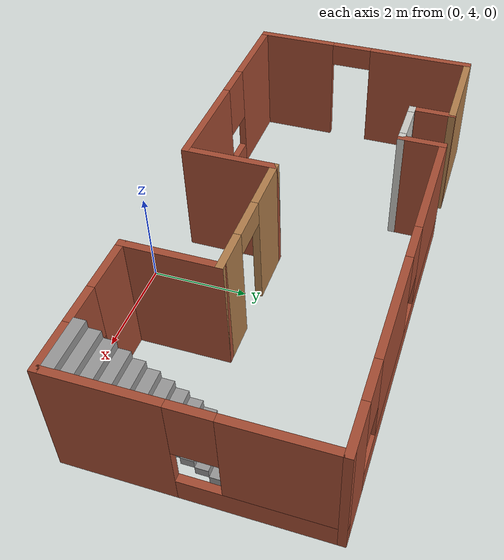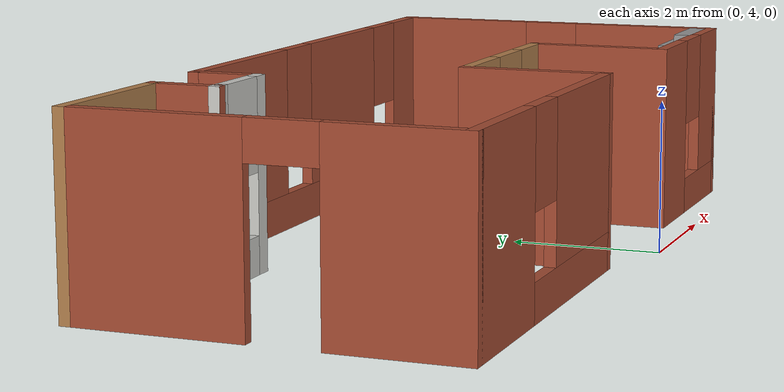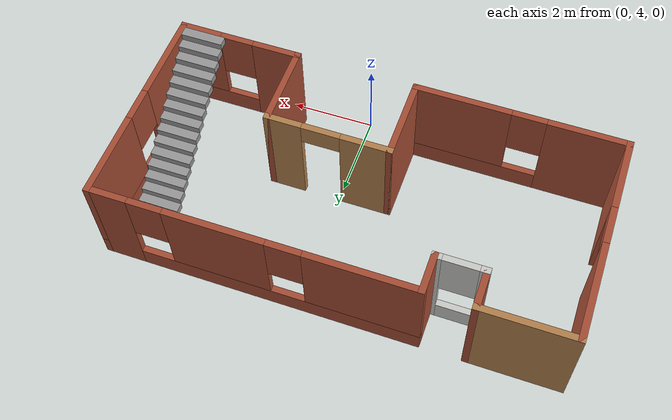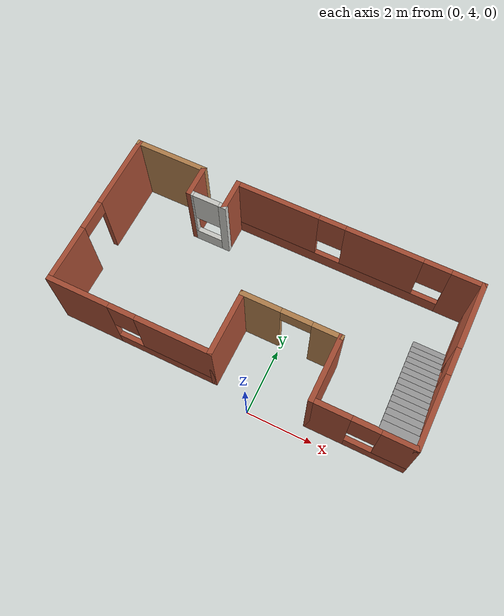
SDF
<?xml version='1.0'?>
<sdf version='1.6'>
  <model name='mybuilding'>
    <pose frame=''>-0.769389 6.84855 0 0 -0 0</pose>
    <link name='Stairs_1'>
      <visual name='Stairs_1_Visual_0'>
        <pose frame=''>4.705 1.01833 0.083333 0 -0 0</pose>
        <geometry>
          <box>
            <size>1 0.233333 0.166667</size>
          </box>
        </geometry>
        <material>
          <script>
            <uri>file://media/materials/scripts/gazebo.material</uri>
            <name>Gazebo/Grey</name>
          </script>
          <ambient>1 1 1 1</ambient>
        </material>
        <meta>
          <layer>0</layer>
        </meta>
      </visual>
      <collision name='Stairs_1_Collision_0'>
        <geometry>
          <box>
            <size>1 0.233333 0.166667</size>
          </box>
        </geometry>
        <pose frame=''>4.705 1.01833 0.083333 0 -0 0</pose>
      </collision>
      <visual name='Stairs_1_Visual_1'>
        <pose frame=''>4.705 0.785 0.25 0 -0 0</pose>
        <geometry>
          <box>
            <size>1 0.233333 0.166667</size>
          </box>
        </geometry>
        <material>
          <script>
            <uri>file://media/materials/scripts/gazebo.material</uri>
            <name>Gazebo/Grey</name>
          </script>
          <ambient>1 1 1 1</ambient>
        </material>
        <meta>
          <layer>0</layer>
        </meta>
      </visual>
      <collision name='Stairs_1_Collision_1'>
        <geometry>
          <box>
            <size>1 0.233333 0.166667</size>
          </box>
        </geometry>
        <pose frame=''>4.705 0.785 0.25 0 -0 0</pose>
      </collision>
      <visual name='Stairs_1_Visual_2'>
        <pose frame=''>4.705 0.551666 0.416667 0 -0 0</pose>
        <geometry>
          <box>
            <size>1 0.233333 0.166667</size>
          </box>
        </geometry>
        <material>
          <script>
            <uri>file://media/materials/scripts/gazebo.material</uri>
            <name>Gazebo/Grey</name>
          </script>
          <ambient>1 1 1 1</ambient>
        </material>
        <meta>
          <layer>0</layer>
        </meta>
      </visual>
      <collision name='Stairs_1_Collision_2'>
        <geometry>
          <box>
            <size>1 0.233333 0.166667</size>
          </box>
        </geometry>
        <pose frame=''>4.705 0.551666 0.416667 0 -0 0</pose>
      </collision>
      <visual name='Stairs_1_Visual_3'>
        <pose frame=''>4.705 0.318333 0.583333 0 -0 0</pose>
        <geometry>
          <box>
            <size>1 0.233333 0.166667</size>
          </box>
        </geometry>
        <material>
          <script>
            <uri>file://media/materials/scripts/gazebo.material</uri>
            <name>Gazebo/Grey</name>
          </script>
          <ambient>1 1 1 1</ambient>
        </material>
        <meta>
          <layer>0</layer>
        </meta>
      </visual>
      <collision name='Stairs_1_Collision_3'>
        <geometry>
          <box>
            <size>1 0.233333 0.166667</size>
          </box>
        </geometry>
        <pose frame=''>4.705 0.318333 0.583333 0 -0 0</pose>
      </collision>
      <visual name='Stairs_1_Visual_4'>
        <pose frame=''>4.705 0.085 0.75 0 -0 0</pose>
        <geometry>
          <box>
            <size>1 0.233333 0.166667</size>
          </box>
        </geometry>
        <material>
          <script>
            <uri>file://media/materials/scripts/gazebo.material</uri>
            <name>Gazebo/Grey</name>
          </script>
          <ambient>1 1 1 1</ambient>
        </material>
        <meta>
          <layer>0</layer>
        </meta>
      </visual>
      <collision name='Stairs_1_Collision_4'>
        <geometry>
          <box>
            <size>1 0.233333 0.166667</size>
          </box>
        </geometry>
        <pose frame=''>4.705 0.085 0.75 0 -0 0</pose>
      </collision>
      <visual name='Stairs_1_Visual_5'>
        <pose frame=''>4.705 -0.148334 0.916667 0 -0 0</pose>
        <geometry>
          <box>
            <size>1 0.233333 0.166667</size>
          </box>
        </geometry>
        <material>
          <script>
            <uri>file://media/materials/scripts/gazebo.material</uri>
            <name>Gazebo/Grey</name>
          </script>
          <ambient>1 1 1 1</ambient>
        </material>
        <meta>
          <layer>0</layer>
        </meta>
      </visual>
      <collision name='Stairs_1_Collision_5'>
        <geometry>
          <box>
            <size>1 0.233333 0.166667</size>
          </box>
        </geometry>
        <pose frame=''>4.705 -0.148334 0.916667 0 -0 0</pose>
      </collision>
      <visual name='Stairs_1_Visual_6'>
        <pose frame=''>4.705 -0.381667 1.08333 0 -0 0</pose>
        <geometry>
          <box>
            <size>1 0.233333 0.166667</size>
          </box>
        </geometry>
        <material>
          <script>
            <uri>file://media/materials/scripts/gazebo.material</uri>
            <name>Gazebo/Grey</name>
          </script>
          <ambient>1 1 1 1</ambient>
        </material>
        <meta>
          <layer>0</layer>
        </meta>
      </visual>
      <collision name='Stairs_1_Collision_6'>
        <geometry>
          <box>
            <size>1 0.233333 0.166667</size>
          </box>
        </geometry>
        <pose frame=''>4.705 -0.381667 1.08333 0 -0 0</pose>
      </collision>
      <visual name='Stairs_1_Visual_7'>
        <pose frame=''>4.705 -0.615 1.25 0 -0 0</pose>
        <geometry>
          <box>
            <size>1 0.233333 0.166667</size>
          </box>
        </geometry>
        <material>
          <script>
            <uri>file://media/materials/scripts/gazebo.material</uri>
            <name>Gazebo/Grey</name>
          </script>
          <ambient>1 1 1 1</ambient>
        </material>
        <meta>
          <layer>0</layer>
        </meta>
      </visual>
      <collision name='Stairs_1_Collision_7'>
        <geometry>
          <box>
            <size>1 0.233333 0.166667</size>
          </box>
        </geometry>
        <pose frame=''>4.705 -0.615 1.25 0 -0 0</pose>
      </collision>
      <visual name='Stairs_1_Visual_8'>
        <pose frame=''>4.705 -0.848333 1.41667 0 -0 0</pose>
        <geometry>
          <box>
            <size>1 0.233333 0.166667</size>
          </box>
        </geometry>
        <material>
          <script>
            <uri>file://media/materials/scripts/gazebo.material</uri>
            <name>Gazebo/Grey</name>
          </script>
          <ambient>1 1 1 1</ambient>
        </material>
        <meta>
          <layer>0</layer>
        </meta>
      </visual>
      <collision name='Stairs_1_Collision_8'>
        <geometry>
          <box>
            <size>1 0.233333 0.166667</size>
          </box>
        </geometry>
        <pose frame=''>4.705 -0.848333 1.41667 0 -0 0</pose>
      </collision>
      <visual name='Stairs_1_Visual_9'>
        <pose frame=''>4.705 -1.08167 1.58333 0 -0 0</pose>
        <geometry>
          <box>
            <size>1 0.233333 0.166667</size>
          </box>
        </geometry>
        <material>
          <script>
            <uri>file://media/materials/scripts/gazebo.material</uri>
            <name>Gazebo/Grey</name>
          </script>
          <ambient>1 1 1 1</ambient>
        </material>
        <meta>
          <layer>0</layer>
        </meta>
      </visual>
      <collision name='Stairs_1_Collision_9'>
        <geometry>
          <box>
            <size>1 0.233333 0.166667</size>
          </box>
        </geometry>
        <pose frame=''>4.705 -1.08167 1.58333 0 -0 0</pose>
      </collision>
      <visual name='Stairs_1_Visual_10'>
        <pose frame=''>4.705 -1.315 1.75 0 -0 0</pose>
        <geometry>
          <box>
            <size>1 0.233333 0.166667</size>
          </box>
        </geometry>
        <material>
          <script>
            <uri>file://media/materials/scripts/gazebo.material</uri>
            <name>Gazebo/Grey</name>
          </script>
          <ambient>1 1 1 1</ambient>
        </material>
        <meta>
          <layer>0</layer>
        </meta>
      </visual>
      <collision name='Stairs_1_Collision_10'>
        <geometry>
          <box>
            <size>1 0.233333 0.166667</size>
          </box>
        </geometry>
        <pose frame=''>4.705 -1.315 1.75 0 -0 0</pose>
      </collision>
      <visual name='Stairs_1_Visual_11'>
        <pose frame=''>4.705 -1.54833 1.91667 0 -0 0</pose>
        <geometry>
          <box>
            <size>1 0.233333 0.166667</size>
          </box>
        </geometry>
        <material>
          <script>
            <uri>file://media/materials/scripts/gazebo.material</uri>
            <name>Gazebo/Grey</name>
          </script>
          <ambient>1 1 1 1</ambient>
        </material>
        <meta>
          <layer>0</layer>
        </meta>
      </visual>
      <collision name='Stairs_1_Collision_11'>
        <geometry>
          <box>
            <size>1 0.233333 0.166667</size>
          </box>
        </geometry>
        <pose frame=''>4.705 -1.54833 1.91667 0 -0 0</pose>
      </collision>
      <visual name='Stairs_1_Visual_12'>
        <pose frame=''>4.705 -1.78167 2.08333 0 -0 0</pose>
        <geometry>
          <box>
            <size>1 0.233333 0.166667</size>
          </box>
        </geometry>
        <material>
          <script>
            <uri>file://media/materials/scripts/gazebo.material</uri>
            <name>Gazebo/Grey</name>
          </script>
          <ambient>1 1 1 1</ambient>
        </material>
        <meta>
          <layer>0</layer>
        </meta>
      </visual>
      <collision name='Stairs_1_Collision_12'>
        <geometry>
          <box>
            <size>1 0.233333 0.166667</size>
          </box>
        </geometry>
        <pose frame=''>4.705 -1.78167 2.08333 0 -0 0</pose>
      </collision>
      <visual name='Stairs_1_Visual_13'>
        <pose frame=''>4.705 -2.015 2.25 0 -0 0</pose>
        <geometry>
          <box>
            <size>1 0.233333 0.166667</size>
          </box>
        </geometry>
        <material>
          <script>
            <uri>file://media/materials/scripts/gazebo.material</uri>
            <name>Gazebo/Grey</name>
          </script>
          <ambient>1 1 1 1</ambient>
        </material>
        <meta>
          <layer>0</layer>
        </meta>
      </visual>
      <collision name='Stairs_1_Collision_13'>
        <geometry>
          <box>
            <size>1 0.233333 0.166667</size>
          </box>
        </geometry>
        <pose frame=''>4.705 -2.015 2.25 0 -0 0</pose>
      </collision>
      <visual name='Stairs_1_Visual_14'>
        <pose frame=''>4.705 -2.24833 2.41667 0 -0 0</pose>
        <geometry>
          <box>
            <size>1 0.233333 0.166667</size>
          </box>
        </geometry>
        <material>
          <script>
            <uri>file://media/materials/scripts/gazebo.material</uri>
            <name>Gazebo/Grey</name>
          </script>
          <ambient>1 1 1 1</ambient>
        </material>
        <meta>
          <layer>0</layer>
        </meta>
      </visual>
      <collision name='Stairs_1_Collision_14'>
        <geometry>
          <box>
            <size>1 0.233333 0.166667</size>
          </box>
        </geometry>
        <pose frame=''>4.705 -2.24833 2.41667 0 -0 0</pose>
      </collision>
    </link>
    <link name='Wall_10'>
      <pose frame=''>5.275 0 0 0 -0 1.5708</pose>
      <visual name='Wall_10_Visual_0'>
        <pose frame=''>-1.4175 0 1.25 0 -0 0</pose>
        <geometry>
          <box>
            <size>2.165 0.15 2.5</size>
          </box>
        </geometry>
        <material>
          <script>
            <uri>file://media/materials/scripts/gazebo.material</uri>
            <name>Gazebo/Bricks</name>
          </script>
          <ambient>1 0.764706 0.305882 1</ambient>
        </material>
        <meta>
          <layer>0</layer>
        </meta>
      </visual>
      <collision name='Wall_10_Collision_0'>
        <geometry>
          <box>
            <size>2.165 0.15 2.5</size>
          </box>
        </geometry>
        <pose frame=''>-1.4175 0 1.25 0 -0 0</pose>
      </collision>
      <visual name='Wall_10_Visual_1'>
        <pose frame=''>1.0825 0 0.25 0 -0 0</pose>
        <geometry>
          <box>
            <size>2.835 0.15 0.5</size>
          </box>
        </geometry>
        <material>
          <script>
            <uri>file://media/materials/scripts/gazebo.material</uri>
            <name>Gazebo/Bricks</name>
          </script>
          <ambient>1 0.764706 0.305882 1</ambient>
        </material>
        <meta>
          <layer>0</layer>
        </meta>
      </visual>
      <collision name='Wall_10_Collision_1'>
        <geometry>
          <box>
            <size>2.835 0.15 0.5</size>
          </box>
        </geometry>
        <pose frame=''>1.0825 0 0.25 0 -0 0</pose>
      </collision>
      <visual name='Wall_10_Visual_2'>
        <pose frame=''>1.4825 0 1.5 0 -0 0</pose>
        <geometry>
          <box>
            <size>2.035 0.15 2</size>
          </box>
        </geometry>
        <material>
          <script>
            <uri>file://media/materials/scripts/gazebo.material</uri>
            <name>Gazebo/Bricks</name>
          </script>
          <ambient>1 0.764706 0.305882 1</ambient>
        </material>
        <meta>
          <layer>0</layer>
        </meta>
      </visual>
      <collision name='Wall_10_Collision_2'>
        <geometry>
          <box>
            <size>2.035 0.15 2</size>
          </box>
        </geometry>
        <pose frame=''>1.4825 0 1.5 0 -0 0</pose>
      </collision>
      <visual name='Wall_10_Visual_3'>
        <pose frame=''>0.065 0 1.9 0 -0 0</pose>
        <geometry>
          <box>
            <size>0.8 0.15 1.2</size>
          </box>
        </geometry>
        <material>
          <script>
            <uri>file://media/materials/scripts/gazebo.material</uri>
            <name>Gazebo/Bricks</name>
          </script>
          <ambient>1 0.764706 0.305882 1</ambient>
        </material>
        <meta>
          <layer>0</layer>
        </meta>
      </visual>
      <collision name='Wall_10_Collision_3'>
        <geometry>
          <box>
            <size>0.8 0.15 1.2</size>
          </box>
        </geometry>
        <pose frame=''>0.065 0 1.9 0 -0 0</pose>
      </collision>
    </link>
    <link name='Wall_11'>
      <pose frame=''>1.6 2.425 0 0 -0 3.14159</pose>
      <visual name='Wall_11_Visual_0'>
        <pose frame=''>-3.2575 0 1.25 0 -0 0</pose>
        <geometry>
          <box>
            <size>0.985 0.15 2.5</size>
          </box>
        </geometry>
        <material>
          <script>
            <uri>file://media/materials/scripts/gazebo.material</uri>
            <name>Gazebo/Bricks</name>
          </script>
          <ambient>1 0.764706 0.305882 1</ambient>
        </material>
        <meta>
          <layer>0</layer>
        </meta>
      </visual>
      <collision name='Wall_11_Collision_0'>
        <geometry>
          <box>
            <size>0.985 0.15 2.5</size>
          </box>
        </geometry>
        <pose frame=''>-3.2575 0 1.25 0 -0 0</pose>
      </collision>
      <visual name='Wall_11_Visual_1'>
        <pose frame=''>0.4925 0 0.25 0 -0 0</pose>
        <geometry>
          <box>
            <size>6.515 0.15 0.5</size>
          </box>
        </geometry>
        <material>
          <script>
            <uri>file://media/materials/scripts/gazebo.material</uri>
            <name>Gazebo/Bricks</name>
          </script>
          <ambient>1 0.764706 0.305882 1</ambient>
        </material>
        <meta>
          <layer>0</layer>
        </meta>
      </visual>
      <collision name='Wall_11_Collision_1'>
        <geometry>
          <box>
            <size>6.515 0.15 0.5</size>
          </box>
        </geometry>
        <pose frame=''>0.4925 0 0.25 0 -0 0</pose>
      </collision>
      <visual name='Wall_11_Visual_2'>
        <pose frame=''>-0.815 0 1.5 0 -0 0</pose>
        <geometry>
          <box>
            <size>2.3 0.15 2</size>
          </box>
        </geometry>
        <material>
          <script>
            <uri>file://media/materials/scripts/gazebo.material</uri>
            <name>Gazebo/Bricks</name>
          </script>
          <ambient>1 0.764706 0.305882 1</ambient>
        </material>
        <meta>
          <layer>0</layer>
        </meta>
      </visual>
      <collision name='Wall_11_Collision_2'>
        <geometry>
          <box>
            <size>2.3 0.15 2</size>
          </box>
        </geometry>
        <pose frame=''>-0.815 0 1.5 0 -0 0</pose>
      </collision>
      <visual name='Wall_11_Visual_3'>
        <pose frame=''>2.4425 0 1.5 0 -0 0</pose>
        <geometry>
          <box>
            <size>2.615 0.15 2</size>
          </box>
        </geometry>
        <material>
          <script>
            <uri>file://media/materials/scripts/gazebo.material</uri>
            <name>Gazebo/Bricks</name>
          </script>
          <ambient>1 0.764706 0.305882 1</ambient>
        </material>
        <meta>
          <layer>0</layer>
        </meta>
      </visual>
      <collision name='Wall_11_Collision_3'>
        <geometry>
          <box>
            <size>2.615 0.15 2</size>
          </box>
        </geometry>
        <pose frame=''>2.4425 0 1.5 0 -0 0</pose>
      </collision>
      <visual name='Wall_11_Visual_4'>
        <pose frame=''>-2.365 0 1.9 0 -0 0</pose>
        <geometry>
          <box>
            <size>0.8 0.15 1.2</size>
          </box>
        </geometry>
        <material>
          <script>
            <uri>file://media/materials/scripts/gazebo.material</uri>
            <name>Gazebo/Bricks</name>
          </script>
          <ambient>1 0.764706 0.305882 1</ambient>
        </material>
        <meta>
          <layer>0</layer>
        </meta>
      </visual>
      <collision name='Wall_11_Collision_4'>
        <geometry>
          <box>
            <size>0.8 0.15 1.2</size>
          </box>
        </geometry>
        <pose frame=''>-2.365 0 1.9 0 -0 0</pose>
      </collision>
      <visual name='Wall_11_Visual_5'>
        <pose frame=''>0.735 0 1.9 0 -0 0</pose>
        <geometry>
          <box>
            <size>0.8 0.15 1.2</size>
          </box>
        </geometry>
        <material>
          <script>
            <uri>file://media/materials/scripts/gazebo.material</uri>
            <name>Gazebo/Bricks</name>
          </script>
          <ambient>1 0.764706 0.305882 1</ambient>
        </material>
        <meta>
          <layer>0</layer>
        </meta>
      </visual>
      <collision name='Wall_11_Collision_5'>
        <geometry>
          <box>
            <size>0.8 0.15 1.2</size>
          </box>
        </geometry>
        <pose frame=''>0.735 0 1.9 0 -0 0</pose>
      </collision>
    </link>
    <link name='Wall_12'>
      <collision name='Wall_12_Collision'>
        <geometry>
          <box>
            <size>1 0.15 2.5</size>
          </box>
        </geometry>
        <pose frame=''>0 0 1.25 0 -0 0</pose>
      </collision>
      <visual name='Wall_12_Visual'>
        <pose frame=''>0 0 1.25 0 -0 0</pose>
        <geometry>
          <box>
            <size>1 0.15 2.5</size>
          </box>
        </geometry>
        <material>
          <script>
            <uri>file://media/materials/scripts/gazebo.material</uri>
            <name>Gazebo/Bricks</name>
          </script>
          <ambient>1 0.764706 0.305882 1</ambient>
        </material>
        <meta>
          <layer>0</layer>
        </meta>
      </visual>
      <pose frame=''>-2.075 2 0 0 0 -1.5708</pose>
    </link>
    <link name='Wall_13'>
      <pose frame=''>-2.625 1.575 0 0 -0 3.14159</pose>
      <visual name='Wall_13_Visual_0'>
        <pose frame=''>-0.5075 0 1.25 0 -0 0</pose>
        <geometry>
          <box>
            <size>0.235 0.15 2.5</size>
          </box>
        </geometry>
        <material>
          <script>
            <uri>file://media/materials/scripts/gazebo.material</uri>
            <name>Gazebo/CeilingTiled</name>
          </script>
          <ambient>1 0.764706 0.305882 1</ambient>
        </material>
        <meta>
          <layer>0</layer>
        </meta>
      </visual>
      <collision name='Wall_13_Collision_0'>
        <geometry>
          <box>
            <size>0.235 0.15 2.5</size>
          </box>
        </geometry>
        <pose frame=''>-0.5075 0 1.25 0 -0 0</pose>
      </collision>
      <visual name='Wall_13_Visual_1'>
        <pose frame=''>0.1175 0 0.25 0 -0 0</pose>
        <geometry>
          <box>
            <size>1.015 0.15 0.5</size>
          </box>
        </geometry>
        <material>
          <script>
            <uri>file://media/materials/scripts/gazebo.material</uri>
            <name>Gazebo/CeilingTiled</name>
          </script>
          <ambient>1 0.764706 0.305882 1</ambient>
        </material>
        <meta>
          <layer>0</layer>
        </meta>
      </visual>
      <collision name='Wall_13_Collision_1'>
        <geometry>
          <box>
            <size>1.015 0.15 0.5</size>
          </box>
        </geometry>
        <pose frame=''>0.1175 0 0.25 0 -0 0</pose>
      </collision>
      <visual name='Wall_13_Visual_2'>
        <pose frame=''>0.5175 0 1.5 0 -0 0</pose>
        <geometry>
          <box>
            <size>0.215 0.15 2</size>
          </box>
        </geometry>
        <material>
          <script>
            <uri>file://media/materials/scripts/gazebo.material</uri>
            <name>Gazebo/CeilingTiled</name>
          </script>
          <ambient>1 0.764706 0.305882 1</ambient>
        </material>
        <meta>
          <layer>0</layer>
        </meta>
      </visual>
      <collision name='Wall_13_Collision_2'>
        <geometry>
          <box>
            <size>0.215 0.15 2</size>
          </box>
        </geometry>
        <pose frame=''>0.5175 0 1.5 0 -0 0</pose>
      </collision>
      <visual name='Wall_13_Visual_3'>
        <pose frame=''>0.01 0 1.9 0 -0 0</pose>
        <geometry>
          <box>
            <size>0.8 0.15 1.2</size>
          </box>
        </geometry>
        <material>
          <script>
            <uri>file://media/materials/scripts/gazebo.material</uri>
            <name>Gazebo/CeilingTiled</name>
          </script>
          <ambient>1 0.764706 0.305882 1</ambient>
        </material>
        <meta>
          <layer>0</layer>
        </meta>
      </visual>
      <collision name='Wall_13_Collision_3'>
        <geometry>
          <box>
            <size>0.8 0.15 1.2</size>
          </box>
        </geometry>
        <pose frame=''>0.01 0 1.9 0 -0 0</pose>
      </collision>
    </link>
    <link name='Wall_14'>
      <collision name='Wall_14_Collision'>
        <geometry>
          <box>
            <size>1 0.15 2.5</size>
          </box>
        </geometry>
        <pose frame=''>0 0 1.25 0 -0 0</pose>
      </collision>
      <visual name='Wall_14_Visual'>
        <pose frame=''>0 0 1.25 0 -0 0</pose>
        <geometry>
          <box>
            <size>1 0.15 2.5</size>
          </box>
        </geometry>
        <material>
          <script>
            <uri>file://media/materials/scripts/gazebo.material</uri>
            <name>Gazebo/Bricks</name>
          </script>
          <ambient>1 0.764706 0.305882 1</ambient>
        </material>
        <meta>
          <layer>0</layer>
        </meta>
      </visual>
      <pose frame=''>-3.175 2 0 0 -0 1.5708</pose>
    </link>
    <link name='Wall_15'>
      <collision name='Wall_15_Collision'>
        <geometry>
          <box>
            <size>2.25 0.15 2.5</size>
          </box>
        </geometry>
        <pose frame=''>0 0 1.25 0 -0 0</pose>
      </collision>
      <visual name='Wall_15_Visual'>
        <pose frame=''>0 0 1.25 0 -0 0</pose>
        <geometry>
          <box>
            <size>2.25 0.15 2.5</size>
          </box>
        </geometry>
        <material>
          <script>
            <uri>file://media/materials/scripts/gazebo.material</uri>
            <name>Gazebo/Wood</name>
          </script>
          <ambient>1 0.764706 0.305882 1</ambient>
        </material>
        <meta>
          <layer>0</layer>
        </meta>
      </visual>
      <pose frame=''>-4.225 2.425 0 0 -0 3.14159</pose>
    </link>
    <link name='Wall_4'>
      <pose frame=''>-5.275 0 0 0 0 -1.5708</pose>
      <visual name='Wall_4_Visual_0'>
        <pose frame=''>-1.3375 0 1.25 0 -0 0</pose>
        <geometry>
          <box>
            <size>2.325 0.15 2.5</size>
          </box>
        </geometry>
        <material>
          <script>
            <uri>file://media/materials/scripts/gazebo.material</uri>
            <name>Gazebo/Bricks</name>
          </script>
          <ambient>0.996078 0.47451 0.0196078 1</ambient>
        </material>
        <meta>
          <layer>0</layer>
        </meta>
      </visual>
      <collision name='Wall_4_Collision_0'>
        <geometry>
          <box>
            <size>2.325 0.15 2.5</size>
          </box>
        </geometry>
        <pose frame=''>-1.3375 0 1.25 0 -0 0</pose>
      </collision>
      <visual name='Wall_4_Visual_1'>
        <pose frame=''>1.6125 0 1.25 0 -0 0</pose>
        <geometry>
          <box>
            <size>1.775 0.15 2.5</size>
          </box>
        </geometry>
        <material>
          <script>
            <uri>file://media/materials/scripts/gazebo.material</uri>
            <name>Gazebo/Bricks</name>
          </script>
          <ambient>0.996078 0.47451 0.0196078 1</ambient>
        </material>
        <meta>
          <layer>0</layer>
        </meta>
      </visual>
      <collision name='Wall_4_Collision_1'>
        <geometry>
          <box>
            <size>1.775 0.15 2.5</size>
          </box>
        </geometry>
        <pose frame=''>1.6125 0 1.25 0 -0 0</pose>
      </collision>
      <visual name='Wall_4_Visual_2'>
        <pose frame=''>0.275 0 2.25 0 -0 0</pose>
        <geometry>
          <box>
            <size>0.9 0.15 0.5</size>
          </box>
        </geometry>
        <material>
          <script>
            <uri>file://media/materials/scripts/gazebo.material</uri>
            <name>Gazebo/Bricks</name>
          </script>
          <ambient>0.996078 0.47451 0.0196078 1</ambient>
        </material>
        <meta>
          <layer>0</layer>
        </meta>
      </visual>
      <collision name='Wall_4_Collision_2'>
        <geometry>
          <box>
            <size>0.9 0.15 0.5</size>
          </box>
        </geometry>
        <pose frame=''>0.275 0 2.25 0 -0 0</pose>
      </collision>
    </link>
    <link name='Wall_5'>
      <pose frame=''>-2.85 -2.425 0 0 -0 0</pose>
      <visual name='Wall_5_Visual_0'>
        <pose frame=''>-1.5525 0 1.25 0 -0 0</pose>
        <geometry>
          <box>
            <size>1.895 0.15 2.5</size>
          </box>
        </geometry>
        <material>
          <script>
            <uri>file://media/materials/scripts/gazebo.material</uri>
            <name>Gazebo/Bricks</name>
          </script>
          <ambient>1 0.764706 0.305882 1</ambient>
        </material>
        <meta>
          <layer>0</layer>
        </meta>
      </visual>
      <collision name='Wall_5_Collision_0'>
        <geometry>
          <box>
            <size>1.895 0.15 2.5</size>
          </box>
        </geometry>
        <pose frame=''>-1.5525 0 1.25 0 -0 0</pose>
      </collision>
      <visual name='Wall_5_Visual_1'>
        <pose frame=''>0.9475 0 0.25 0 -0 0</pose>
        <geometry>
          <box>
            <size>3.105 0.15 0.5</size>
          </box>
        </geometry>
        <material>
          <script>
            <uri>file://media/materials/scripts/gazebo.material</uri>
            <name>Gazebo/Bricks</name>
          </script>
          <ambient>1 0.764706 0.305882 1</ambient>
        </material>
        <meta>
          <layer>0</layer>
        </meta>
      </visual>
      <collision name='Wall_5_Collision_1'>
        <geometry>
          <box>
            <size>3.105 0.15 0.5</size>
          </box>
        </geometry>
        <pose frame=''>0.9475 0 0.25 0 -0 0</pose>
      </collision>
      <visual name='Wall_5_Visual_2'>
        <pose frame=''>1.3475 0 1.5 0 -0 0</pose>
        <geometry>
          <box>
            <size>2.305 0.15 2</size>
          </box>
        </geometry>
        <material>
          <script>
            <uri>file://media/materials/scripts/gazebo.material</uri>
            <name>Gazebo/Bricks</name>
          </script>
          <ambient>1 0.764706 0.305882 1</ambient>
        </material>
        <meta>
          <layer>0</layer>
        </meta>
      </visual>
      <collision name='Wall_5_Collision_2'>
        <geometry>
          <box>
            <size>2.305 0.15 2</size>
          </box>
        </geometry>
        <pose frame=''>1.3475 0 1.5 0 -0 0</pose>
      </collision>
      <visual name='Wall_5_Visual_3'>
        <pose frame=''>-0.205 0 1.9 0 -0 0</pose>
        <geometry>
          <box>
            <size>0.8 0.15 1.2</size>
          </box>
        </geometry>
        <material>
          <script>
            <uri>file://media/materials/scripts/gazebo.material</uri>
            <name>Gazebo/Bricks</name>
          </script>
          <ambient>1 0.764706 0.305882 1</ambient>
        </material>
        <meta>
          <layer>0</layer>
        </meta>
      </visual>
      <collision name='Wall_5_Collision_3'>
        <geometry>
          <box>
            <size>0.8 0.15 1.2</size>
          </box>
        </geometry>
        <pose frame=''>-0.205 0 1.9 0 -0 0</pose>
      </collision>
    </link>
    <link name='Wall_6'>
      <collision name='Wall_6_Collision'>
        <geometry>
          <box>
            <size>2 0.15 2.5</size>
          </box>
        </geometry>
        <pose frame=''>0 0 1.25 0 -0 0</pose>
      </collision>
      <visual name='Wall_6_Visual'>
        <pose frame=''>0 0 1.25 0 -0 0</pose>
        <geometry>
          <box>
            <size>2 0.15 2.5</size>
          </box>
        </geometry>
        <material>
          <script>
            <uri>file://media/materials/scripts/gazebo.material</uri>
            <name>Gazebo/Bricks</name>
          </script>
          <ambient>1 0.764706 0.305882 1</ambient>
        </material>
        <meta>
          <layer>0</layer>
        </meta>
      </visual>
      <pose frame=''>-0.425 -1.5 0 0 -0 1.5708</pose>
    </link>
    <link name='Wall_7'>
      <pose frame=''>1 -0.575 0 0 -0 0</pose>
      <visual name='Wall_7_Visual_0'>
        <pose frame=''>-0.8925 0 1.25 0 -0 0</pose>
        <geometry>
          <box>
            <size>1.215 0.15 2.5</size>
          </box>
        </geometry>
        <material>
          <script>
            <uri>file://media/materials/scripts/gazebo.material</uri>
            <name>Gazebo/Wood</name>
          </script>
          <ambient>1 0.764706 0.305882 1</ambient>
        </material>
        <meta>
          <layer>0</layer>
        </meta>
      </visual>
      <collision name='Wall_7_Collision_0'>
        <geometry>
          <box>
            <size>1.215 0.15 2.5</size>
          </box>
        </geometry>
        <pose frame=''>-0.8925 0 1.25 0 -0 0</pose>
      </collision>
      <visual name='Wall_7_Visual_1'>
        <pose frame=''>1.0575 0 1.25 0 -0 0</pose>
        <geometry>
          <box>
            <size>0.885 0.15 2.5</size>
          </box>
        </geometry>
        <material>
          <script>
            <uri>file://media/materials/scripts/gazebo.material</uri>
            <name>Gazebo/Wood</name>
          </script>
          <ambient>1 0.764706 0.305882 1</ambient>
        </material>
        <meta>
          <layer>0</layer>
        </meta>
      </visual>
      <collision name='Wall_7_Collision_1'>
        <geometry>
          <box>
            <size>0.885 0.15 2.5</size>
          </box>
        </geometry>
        <pose frame=''>1.0575 0 1.25 0 -0 0</pose>
      </collision>
      <visual name='Wall_7_Visual_2'>
        <pose frame=''>0.165 0 2.25 0 -0 0</pose>
        <geometry>
          <box>
            <size>0.9 0.15 0.5</size>
          </box>
        </geometry>
        <material>
          <script>
            <uri>file://media/materials/scripts/gazebo.material</uri>
            <name>Gazebo/Wood</name>
          </script>
          <ambient>1 0.764706 0.305882 1</ambient>
        </material>
        <meta>
          <layer>0</layer>
        </meta>
      </visual>
      <collision name='Wall_7_Collision_2'>
        <geometry>
          <box>
            <size>0.9 0.15 0.5</size>
          </box>
        </geometry>
        <pose frame=''>0.165 0 2.25 0 -0 0</pose>
      </collision>
    </link>
    <link name='Wall_8'>
      <collision name='Wall_8_Collision'>
        <geometry>
          <box>
            <size>2 0.15 2.5</size>
          </box>
        </geometry>
        <pose frame=''>0 0 1.25 0 -0 0</pose>
      </collision>
      <visual name='Wall_8_Visual'>
        <pose frame=''>0 0 1.25 0 -0 0</pose>
        <geometry>
          <box>
            <size>2 0.15 2.5</size>
          </box>
        </geometry>
        <material>
          <script>
            <uri>file://media/materials/scripts/gazebo.material</uri>
            <name>Gazebo/Bricks</name>
          </script>
          <ambient>1 0.764706 0.305882 1</ambient>
        </material>
        <meta>
          <layer>0</layer>
        </meta>
      </visual>
      <pose frame=''>2.425 -1.5 0 0 0 -1.5708</pose>
    </link>
    <link name='Wall_9'>
      <pose frame=''>3.85 -2.425 0 0 -0 0</pose>
      <visual name='Wall_9_Visual_0'>
        <pose frame=''>-0.9125 0 1.25 0 -0 0</pose>
        <geometry>
          <box>
            <size>1.175 0.15 2.5</size>
          </box>
        </geometry>
        <material>
          <script>
            <uri>file://media/materials/scripts/gazebo.material</uri>
            <name>Gazebo/Bricks</name>
          </script>
          <ambient>1 0.764706 0.305882 1</ambient>
        </material>
        <meta>
          <layer>0</layer>
        </meta>
      </visual>
      <collision name='Wall_9_Collision_0'>
        <geometry>
          <box>
            <size>1.175 0.15 2.5</size>
          </box>
        </geometry>
        <pose frame=''>-0.9125 0 1.25 0 -0 0</pose>
      </collision>
      <visual name='Wall_9_Visual_1'>
        <pose frame=''>0.5875 0 0.25 0 -0 0</pose>
        <geometry>
          <box>
            <size>1.825 0.15 0.5</size>
          </box>
        </geometry>
        <material>
          <script>
            <uri>file://media/materials/scripts/gazebo.material</uri>
            <name>Gazebo/Bricks</name>
          </script>
          <ambient>1 0.764706 0.305882 1</ambient>
        </material>
        <meta>
          <layer>0</layer>
        </meta>
      </visual>
      <collision name='Wall_9_Collision_1'>
        <geometry>
          <box>
            <size>1.825 0.15 0.5</size>
          </box>
        </geometry>
        <pose frame=''>0.5875 0 0.25 0 -0 0</pose>
      </collision>
      <visual name='Wall_9_Visual_2'>
        <pose frame=''>0.9875 0 1.5 0 -0 0</pose>
        <geometry>
          <box>
            <size>1.025 0.15 2</size>
          </box>
        </geometry>
        <material>
          <script>
            <uri>file://media/materials/scripts/gazebo.material</uri>
            <name>Gazebo/Bricks</name>
          </script>
          <ambient>1 0.764706 0.305882 1</ambient>
        </material>
        <meta>
          <layer>0</layer>
        </meta>
      </visual>
      <collision name='Wall_9_Collision_2'>
        <geometry>
          <box>
            <size>1.025 0.15 2</size>
          </box>
        </geometry>
        <pose frame=''>0.9875 0 1.5 0 -0 0</pose>
      </collision>
      <visual name='Wall_9_Visual_3'>
        <pose frame=''>0.075 0 1.9 0 -0 0</pose>
        <geometry>
          <box>
            <size>0.8 0.15 1.2</size>
          </box>
        </geometry>
        <material>
          <script>
            <uri>file://media/materials/scripts/gazebo.material</uri>
            <name>Gazebo/Bricks</name>
          </script>
          <ambient>1 0.764706 0.305882 1</ambient>
        </material>
        <meta>
          <layer>0</layer>
        </meta>
      </visual>
      <collision name='Wall_9_Collision_3'>
        <geometry>
          <box>
            <size>0.8 0.15 1.2</size>
          </box>
        </geometry>
        <pose frame=''>0.075 0 1.9 0 -0 0</pose>
      </collision>
    </link>
    <static>1</static>
  </model>
</sdf>
